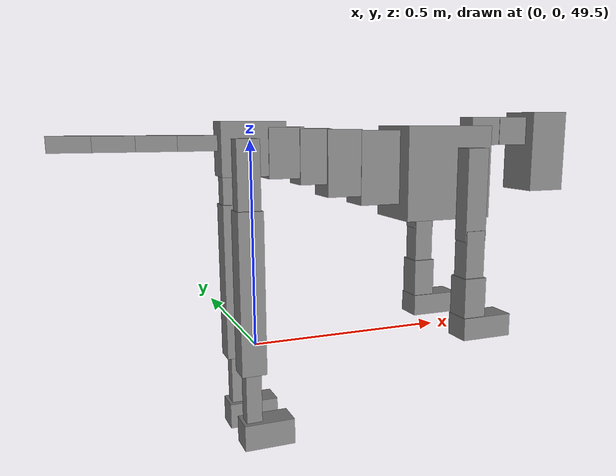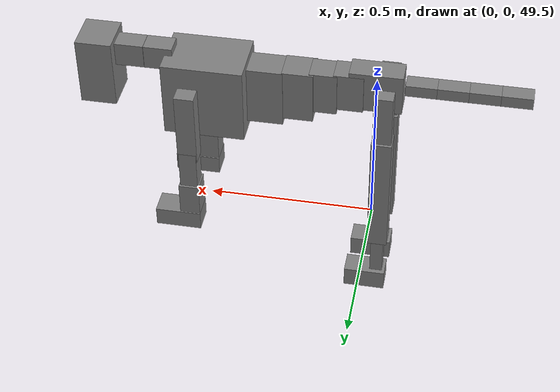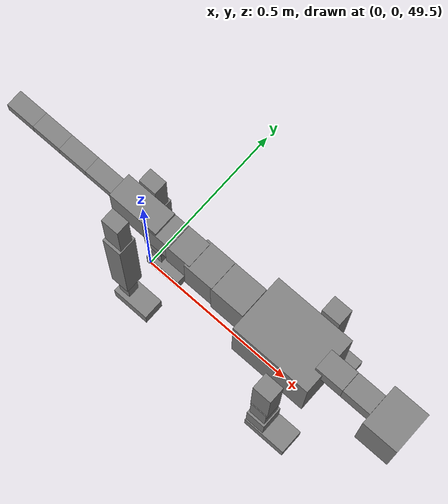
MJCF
<mujoco model="dog">

    <default>
        <joint armature="0.02" stiffness="1" damping="0.2" limited="true"/>
        <geom condim="3" friction="1 0.05 0.05" margin="0.01"/>
        <motor ctrllimited="true" ctrlrange="-1.0 1.0" forcelimited="true" gear="50"/>
    </default>

    <compiler inertiafromgeom="true" angle="radian"/>

    <option timestep="0.016" iterations="50" tolerance="1e-10" solver="Newton" jacobian="dense" cone="pyramidal"/>

    <size nconmax="20000" njmax="60000" nstack="5000000"/>
    <visual>
        <map force="0.1" zfar="30"/>
        <rgba haze="0.15 0.25 0.35 1"/>
        <quality shadowsize="2048"/>
        <global offwidth="800" offheight="800"/>
    </visual>

    <asset>
        <texture type="skybox" builtin="gradient" rgb1="0.3 0.5 0.7" rgb2="0 0 0" width="512" height="512"/>
        <texture name="texplane" type="2d" builtin="checker" rgb1=".2 .3 .4" rgb2=".1 0.15 0.2" width="512" height="512"
                 mark="cross" markrgb=".8 .8 .8"/>
        <texture name="texgeom" type="cube" builtin="flat" mark="cross" width="127" height="1278" rgb1="0.8 0.6 0.4"
                 rgb2="0.8 0.6 0.4" markrgb="1 1 1" random="0.01"/>

        <material name="matplane" reflectance="0.3" texture="texplane" texrepeat="1 1" texuniform="true"/>
        <material name="matgeom" texture="texgeom" texuniform="true" rgba="0.8 0.6 .4 1"/>
    </asset>

    <worldbody>
        <geom name="floor" pos="0 0 0" size="0 0 .25" type="plane" material="matplane" condim="3"/>

        <light directional="false" diffuse=".2 .2 .2" specular="0 0 0" pos="0 0 5" dir="0 0 -1" castshadow="false"/>
        <light mode="targetbodycom" target="torso" directional="false" diffuse=".8 .8 .8" specular="0.3 0.3 0.3"
               pos="0 0 4.0" dir="0 0 -1"/>

        <body name="root" pos="0 0 50">
            <freejoint name="root_1"/>
            <geom type="box" pos="0 0 -0.02" size="0.0774  0.0358  0.063" density="2030"/>

            <body name="spine1" pos="0.054 0 0">
                <joint name="spine1_y" axis="0 1 0" range="0 0.7" limited="true"/>
                <geom type="box" pos="0.02375 0 -0.03" size="0.04375  0.0375  0.05985" density="2030"/>

                <body name="spine2" pos="0.0612 0 0">
                    <joint name="spine2_y" axis="0 1 0" range="-0.15 0.15" limited="true"/>
                    <geom type="box" pos="0.03555  0  -0.04" size="0.04055  0.039  0.06615" density="2030"/>

                    <body name="spine3" pos="0.0730 0 0">
                        <joint name="spine3_y" axis="0 1 0" range="-0.15 0.15" limited="true"/>
                        <geom type="box" pos="0.03555  0  -0.057" size="0.04555  0.0445  0.081" density="2030"/>

                        <body name="spine4" pos="0.0780 0 0">
                            <joint name="spine4_y" axis="0 1 0" range="-0.15 0.15" limited="true"/>
                            <geom type="box" pos="0.05265  0  -0.07" size="0.05265  0.045  0.09135" density="2030"/>

                            <body name="torso" pos="0.1082 0 0">
                                <joint name="torso_y" axis="0 1 0" range="-0.15 0.15" limited="true"/>
                                <geom type="box" pos="0.11925  0  -0.085" size="0.11925  0.085  0.11745"
                                      density="2030"/>

                                <body name="neck1" pos="0.2160  0   0.0180">
                                    <joint name="neck1_y" axis="0 1 0" range="-1.2  -1" limited="true"/>
                                    <geom type="box" pos="0.0423  0  0" size="0.0423  0.03  0.036" density="2325"/>

                                    <body name="neck2" pos="0.0853  0  0">
                                        <joint name="neck2_y" axis="0 1 0" range="0.1  0" limited="true"/>
                                        <geom type="box" pos="0.0423  0  0" size="0.0423  0.03  0.036" density="2325"/>

                                        <body name="head" pos="0.0853  0  0">
                                            <joint name="head_y" axis="0 1 0" range="-0.3  -0.2" limited="true"/>
                                            <geom type="box" pos="0.0531  0  -0.055" size="0.0531  0.06  0.1044"
                                                  density="4030"/>

                                        </body>
                                    </body>
                                </body>

                                <body name="front_shoulder" pos="0.156  0   -0.0480">
                                    <joint name="front_shoulder_y" axis="0 1 0" range="-1 1.5" limited="true"/>
                                    <geom type="box" pos="0 0.13 -0.0883" size="0.0287  0.0245  0.1150" density="1158"/>
                                    <geom type="box" pos="0 -0.13 -0.0883" size="0.0287  0.0245  0.1150"
                                          density="1158"/>

                                    <body name="front_elbow" pos="0  0  -0.1767">
                                        <joint name="front_elbow_y" axis="0 1 0" range="-2 0" limited="true"/>
                                        <geom type="box" pos="0 0.13 -0.0664" size="0.0260  0.0266  0.0664"
                                              density="1081"/>
                                        <geom type="box" pos="0 -0.13 -0.0664" size="0.0260  0.0266  0.0664"
                                              density="1081"/>

                                        <body name="front_wrist" pos="0  0  -0.1327">
                                            <joint name="front_wrist_y" axis="0 1 0" range="-0.2 0" limited="true"/>
                                            <geom type="box" pos="0 0.13 -0.0514" size="0.0301  0.0335  0.0645"
                                                  density="1664"/>
                                            <geom type="box" pos="0 -0.13 -0.0514" size="0.0301  0.0335  0.0645"
                                                  density="1664"/>

                                            <body name="front_finger_end" pos="0  0  -0.1027">
                                                <joint name="front_finger_y" axis="0 1 0" range="-0.4 1"
                                                       limited="true"/>
                                                <geom type="box" pos="0.0371  0.13  -0.0139"
                                                      size="0.0680  0.0371  0.0289" density="1515"/>
                                                <geom type="box" pos="0.0371  -0.13  -0.0139"
                                                      size="0.0680  0.0371  0.0289" density="1515"/>

                                            </body>

                                        </body>
                                    </body>
                                </body>

                            </body>
                        </body>
                    </body>
                </body>
            </body>

            <body name="back_hip" pos="-0.03 0 -0.018">
                <joint name="back_hip_y" axis="0 1 0" range="-1.5 0.3" limited="true"/>
                <geom type="box" pos="0 0.07 -0.0768" size="0.0273  0.0214  0.0996" density="1154"/>
                <geom type="box" pos="0 -0.07 -0.0768" size="0.0273  0.0214  0.0996" density="1154"/>

                <body name="back_knee" pos="0  0  -0.1535">
                    <joint name="back_knee_y" axis="0 1 0" range="0 2.8" limited="true"/>
                    <geom type="box" pos="0 0.07 -0.1788" size="0.0302  0.0298  0.1943" density="1227"/>
                    <geom type="box" pos="0 -0.07 -0.1788" size="0.0302  0.0298  0.1943" density="1227"/>

                    <body name="back_ankle" pos="0  0  -0.3576">
                        <joint name="back_ankle_y" axis="0 1 0" range="-2.2 0" limited="true"/>
                        <geom type="box" pos="0 0.07 -0.0757" size="0.0190  0.0190  0.0869" density="1284"/>
                        <geom type="box" pos="0 -0.07 -0.0757" size="0.0190  0.0190  0.0869" density="1284"/>

                        <body name="back_toe_end" pos="0  0  -0.1514">
                            <joint name="back_toe_y" axis="0 1 0" range="-0.4 1" limited="true"/>
                            <geom type="box" pos="0.0339  0.07  -0.0169" size="0.0621  0.0339  0.0319" density="1515"/>
                            <geom type="box" pos="0.0339  -0.07  -0.0169" size="0.0621  0.0339  0.0319" density="1515"/>

                        </body>
                    </body>
                </body>
            </body>

            <body name="tail1" pos="-0.074 0 -0.006">
                <joint name="tail1_y" axis="0 1 0" range="-0.2 0.2" limited="true"/>
                <geom type="box" pos="-0.0536  0  0" size="0.045  0.025  0.0175" density="1587"/>

                <body name="tail2" pos="-0.09 0 0">
                    <joint name="tail2_y" axis="0 1 0" range="-0.2 0.2" limited="true"/>
                    <geom type="box" pos="-0.0536  0  0" size="0.045  0.025  0.0175" density="1587"/>

                    <body name="tail3" pos="-0.09 0 0">
                        <joint name="tail3_y" axis="0 1 0" range="-0.2 0.2" limited="true"/>
                        <geom type="box" pos="-0.0536  0  0" size="0.045  0.025  0.0175" density="1587"/>

                        <body name="tail4" pos="-0.09 0 0">
                            <joint name="tail4_y" axis="0 1 0" range="-0.2 0.2" limited="true"/>
                            <geom type="box" pos="-0.0536  0  0" size="0.045  0.025  0.0175" density="1587"/>

                        </body>
                    </body>
                </body>
            </body>
        </body>
    </worldbody>

    <actuator>
        <motor joint="spine1_y" forcerange="-150 150     "/>
        <motor joint="spine2_y" forcerange="-150 150     "/>
        <motor joint="spine3_y" forcerange="-150 150     "/>
        <motor joint="spine4_y" forcerange="-150 150     "/>
        <motor joint="torso_y" forcerange="-150 150     "/>
        <motor joint="neck1_y" forcerange="-100 100       "/>
        <motor joint="neck2_y" forcerange="-100 100       "/>
        <motor joint="head_y" forcerange="-150 150       "/>
        <motor joint="front_shoulder_y" forcerange="-113.84 149.66"/>
        <motor joint="front_elbow_y" forcerange="-124.42 169.02"/>
        <motor joint="front_wrist_y" forcerange="-124.01 143.99"/>
        <motor joint="front_finger_y" forcerange="-81.65 76.16"/>
        <motor joint="back_hip_y" forcerange="-211.80 273.31"/>
        <motor joint="back_knee_y" forcerange="-266.13 367.36"/>
        <motor joint="back_angle_y" forcerange="-152.92 51.08"/>
        <motor joint="back_toe_y" forcerange="-137.81 53.00"/>
        <motor joint="tail1_y" forcerange="-50 50     "/>
        <motor joint="tail2_y" forcerange="-50 50     "/>
        <motor joint="tail3_y" forcerange="-50 50     "/>
        <motor joint="tail4_y" forcerange="-50 50     "/>
    </actuator>
</mujoco>
